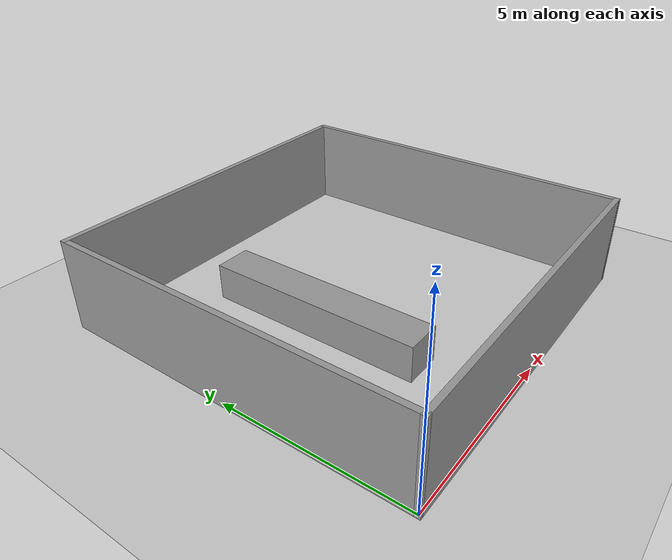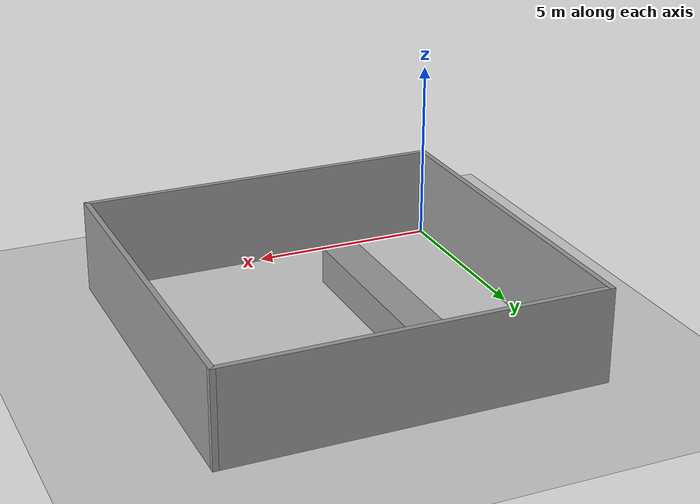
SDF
<sdf version="1.6">
 <world name="default">
  <model name="ground_plane">
   <static>1</static>
   <link name="link">
    <collision name="collision">
     <geometry><plane><normal>0 0 1</normal><size>100 100</size></plane></geometry>
     <surface><friction><ode><mu>100</mu><mu2>50</mu2></ode></friction></surface>
    </collision>
    <visual name="visual">
     <cast_shadows>0</cast_shadows>
     <geometry><plane><normal>0 0 1</normal><size>100 100</size></plane></geometry>
     <material>
      <script><uri>file://media/materials/scripts/gazebo.material</uri><name>Gazebo/Grey</name></script>
     </material>
    </visual>
   </link>
  </model>
  <light name="sun" type="directional">
   <pose>0 0 10 0 -0 0</pose>
   <diffuse>0.8 0.8 0.8 1</diffuse>
   <specular>0.1 0.1 0.1 1</specular>
   <attenuation>
    <range>1000</range>
    <constant>0.9</constant>
    <linear>0.01</linear>
    <quadratic>0.001</quadratic>
   </attenuation>
   <direction>-0.5 0.5 -1</direction>
  </light>
  <gravity>0 0 -9.8</gravity>
  <magnetic_field>6e-06 2.3e-05 -4.2e-05</magnetic_field>
  <atmosphere type="adiabatic"/>
  <physics name="default_physics" default="0" type="ode">
   <max_step_size>0.001</max_step_size>
   <real_time_factor>1</real_time_factor>
   <real_time_update_rate>1000</real_time_update_rate>
  </physics>
  <scene><ambient>0.4 0.4 0.4 1</ambient><background>0.7 0.7 0.7 1</background><shadows>1</shadows></scene>
  <spherical_coordinates>
   <surface_model>EARTH_WGS84</surface_model>
   <latitude_deg>0</latitude_deg>
   <longitude_deg>0</longitude_deg>
   <elevation>0</elevation>
   <heading_deg>0</heading_deg>
  </spherical_coordinates>
  <model name="Square_10x10">
   <pose>4.91877 4.91643 0 0 -0 0</pose>
   <link name="Wall_13">
    <collision name="Wall_13_Collision">
     <geometry><box><size>10 0.15 2.5</size></box></geometry>
     <pose>0 0 1.25 0 -0 0</pose>
    </collision>
    <visual name="Wall_13_Visual">
     <pose>0 0 1.25 0 -0 0</pose>
     <geometry><box><size>10 0.15 2.5</size></box></geometry>
     <material>
      <script><uri>file://media/materials/scripts/gazebo.material</uri><name>Gazebo/Grey</name></script>
      <ambient>1 1 1 1</ambient>
     </material>
    </visual>
    <pose>0 -4.925 0 0 -0 0</pose>
   </link>
   <link name="Wall_14">
    <collision name="Wall_14_Collision">
     <geometry><box><size>10 0.15 2.5</size></box></geometry>
     <pose>0 0 1.25 0 -0 0</pose>
    </collision>
    <visual name="Wall_14_Visual">
     <pose>0 0 1.25 0 -0 0</pose>
     <geometry><box><size>10 0.15 2.5</size></box></geometry>
     <material>
      <script><uri>file://media/materials/scripts/gazebo.material</uri><name>Gazebo/Grey</name></script>
      <ambient>1 1 1 1</ambient>
     </material>
    </visual>
    <pose>4.925 0 0 0 -0 1.5708</pose>
   </link>
   <link name="Wall_15">
    <collision name="Wall_15_Collision">
     <geometry><box><size>10 0.15 2.5</size></box></geometry>
     <pose>0 0 1.25 0 -0 0</pose>
    </collision>
    <visual name="Wall_15_Visual">
     <pose>0 0 1.25 0 -0 0</pose>
     <geometry><box><size>10 0.15 2.5</size></box></geometry>
     <material>
      <script><uri>file://media/materials/scripts/gazebo.material</uri><name>Gazebo/Grey</name></script>
      <ambient>1 1 1 1</ambient>
     </material>
    </visual>
    <pose>0 4.925 0 0 -0 3.14159</pose>
   </link>
   <link name="Wall_9">
    <collision name="Wall_9_Collision">
     <geometry><box><size>10 0.15 2.5</size></box></geometry>
     <pose>0 0 1.25 0 -0 0</pose>
    </collision>
    <visual name="Wall_9_Visual">
     <pose>0 0 1.25 0 -0 0</pose>
     <geometry><box><size>10 0.15 2.5</size></box></geometry>
     <material>
      <script><uri>file://media/materials/scripts/gazebo.material</uri><name>Gazebo/Grey</name></script>
      <ambient>1 1 1 1</ambient>
     </material>
    </visual>
    <pose>-4.925 0 0 0 -0 1.5708</pose>
   </link>
   <static>1</static>
  </model>
  <model name="narrow_hall_wall">
   <link name="link_1">
    <inertial>
     <mass>1</mass>
     <inertia>
      <ixx>0.166667</ixx>
      <ixy>0</ixy>
      <ixz>0</ixz>
      <iyy>0.166667</iyy>
      <iyz>0</iyz>
      <izz>0.166667</izz>
     </inertia>
    </inertial>
    <visual name="visual">
     <geometry><box><size>1 6 1</size></box></geometry>
     <material>
      <lighting>1</lighting>
      <script><uri>file://media/materials/scripts/gazebo.material</uri><name>Gazebo/Grey</name></script>
      <ambient>0.3 0.3 0.3 1</ambient>
      <diffuse>0.7 0.7 0.7 1</diffuse>
      <specular>0.01 0.01 0.01 1</specular>
      <emissive>0 0 0 1</emissive>
      <shader type="vertex"><normal_map>__default__</normal_map></shader>
     </material>
    </visual>
    <collision name="collision">
     <geometry><box><size>1 6 1</size></box></geometry>
     <surface>
      <friction>
       <ode><mu>1</mu><mu2>1</mu2><fdir1>0 0 0</fdir1><slip1>0</slip1><slip2>0</slip2></ode>
       <torsional>
        <coefficient>1</coefficient>
        <patch_radius>0</patch_radius>
        <surface_radius>0</surface_radius>
        <use_patch_radius>1</use_patch_radius>
        <ode><slip>0</slip></ode>
       </torsional>
      </friction>
      <bounce><restitution_coefficient>0</restitution_coefficient><threshold>1e+06</threshold></bounce>
      <contact>
       <collide_without_contact>0</collide_without_contact>
       <collide_without_contact_bitmask>1</collide_without_contact_bitmask>
       <collide_bitmask>1</collide_bitmask>
       <ode>
        <soft_cfm>0</soft_cfm>
        <soft_erp>0.2</soft_erp>
        <kp>1e+13</kp>
        <kd>1</kd>
        <max_vel>0.01</max_vel>
        <min_depth>0</min_depth>
       </ode>
       <bullet>
        <split_impulse>1</split_impulse>
        <split_impulse_penetration_threshold>-0.01</split_impulse_penetration_threshold>
        <soft_cfm>0</soft_cfm>
        <soft_erp>0.2</soft_erp>
        <kp>1e+13</kp>
        <kd>1</kd>
       </bullet>
      </contact>
     </surface>
    </collision>
   </link>
   <static>0</static>
   <pose>3.47829 5.00131 0.5 0 -0 0</pose>
  </model>
 </world>
</sdf>
